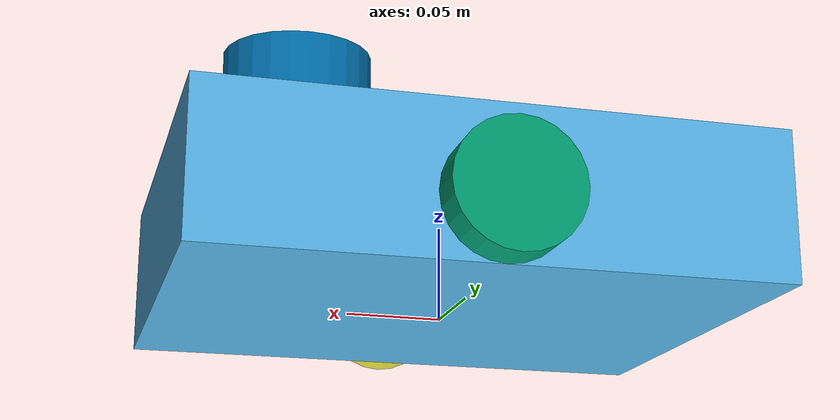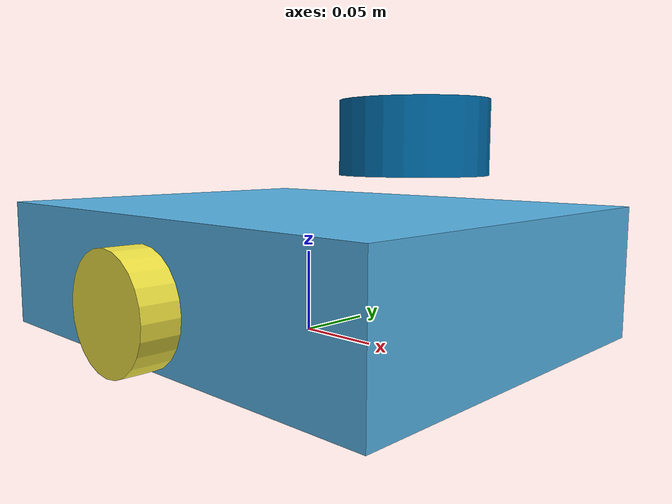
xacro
<?xml version="1.0"?>
<robot xmlns:xacro="http://www.ros.org/wiki/xacro" name="slam_robot">
  <xacro:arg name="chassis_length" default="0.30"/>
  <xacro:arg name="chassis_width" default="0.24"/>
  <xacro:arg name="chassis_height" default="0.08"/>
  <xacro:arg name="wheel_radius" default="0.033"/>
  <xacro:arg name="wheel_width" default="0.025"/>
  <xacro:arg name="wheel_separation" default="0.26"/>
  <xacro:arg name="laser_x" default="0.08"/>
  <xacro:arg name="laser_y" default="0.0"/>
  <xacro:arg name="laser_z" default="0.12"/>

  <!-- Reference geometry only until measured on the physical robot. -->
  <link name="base_footprint"/>
  <link name="base_link">
    <visual>
      <origin xyz="0 0 ${$(arg chassis_height)/2}" rpy="0 0 0"/>
      <geometry><box size="$(arg chassis_length) $(arg chassis_width) $(arg chassis_height)"/></geometry>
    </visual>
    <collision>
      <origin xyz="0 0 ${$(arg chassis_height)/2}" rpy="0 0 0"/>
      <geometry><box size="$(arg chassis_length) $(arg chassis_width) $(arg chassis_height)"/></geometry>
    </collision>
    <inertial>
      <origin xyz="0 0 ${$(arg chassis_height)/2}" rpy="0 0 0"/>
      <mass value="2.0"/>
      <inertia ixx="0.010" ixy="0" ixz="0" iyy="0.015" iyz="0" izz="0.020"/>
    </inertial>
  </link>
  <joint name="base_footprint_joint" type="fixed">
    <parent link="base_footprint"/>
    <child link="base_link"/>
  </joint>

  <xacro:macro name="wheel" params="name side">
    <link name="${name}_wheel_link">
      <visual>
        <origin rpy="1.57079632679 0 0"/>
        <geometry><cylinder radius="$(arg wheel_radius)" length="$(arg wheel_width)"/></geometry>
      </visual>
      <collision>
        <origin rpy="1.57079632679 0 0"/>
        <geometry><cylinder radius="$(arg wheel_radius)" length="$(arg wheel_width)"/></geometry>
      </collision>
    </link>
    <joint name="${name}_wheel_joint" type="continuous">
      <parent link="base_link"/>
      <child link="${name}_wheel_link"/>
      <origin xyz="0 ${side * 0.5 * $(arg wheel_separation)} $(arg wheel_radius)" rpy="0 0 0"/>
      <axis xyz="0 1 0"/>
    </joint>
  </xacro:macro>
  <xacro:wheel name="left" side="1"/>
  <xacro:wheel name="right" side="-1"/>

  <link name="laser_link">
    <visual><geometry><cylinder radius="0.04" length="0.04"/></geometry></visual>
    <collision><geometry><cylinder radius="0.04" length="0.04"/></geometry></collision>
  </link>
  <joint name="laser_joint" type="fixed">
    <parent link="base_link"/>
    <child link="laser_link"/>
    <origin xyz="$(arg laser_x) $(arg laser_y) $(arg laser_z)" rpy="0 0 0"/>
  </joint>
</robot>
